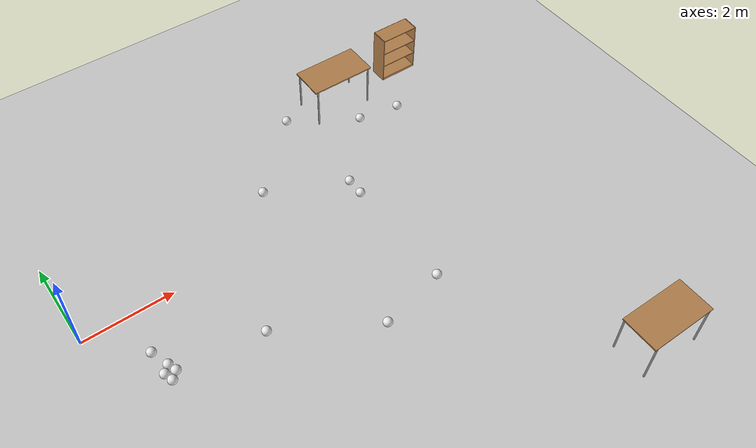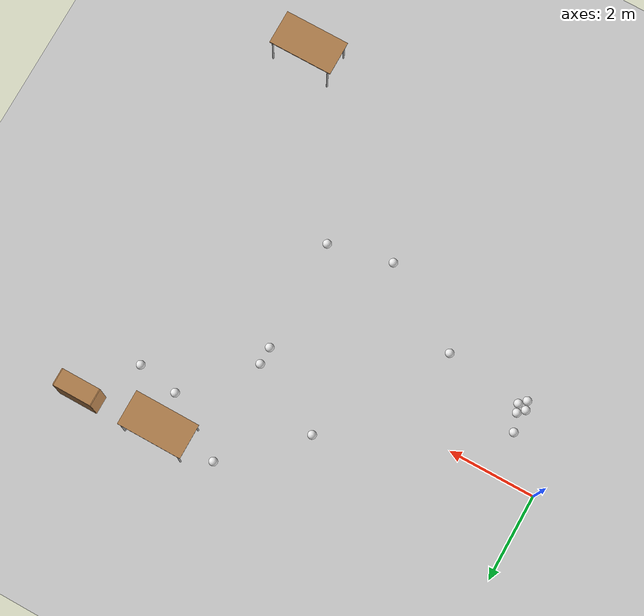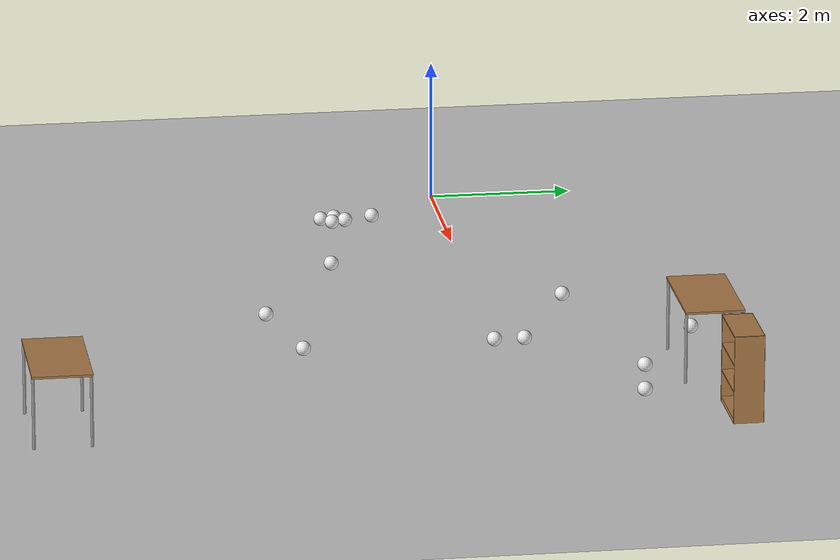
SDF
<sdf version="1.6">
 <world name="default">
  <model name="ground_plane">
   <static>1</static>
   <link name="link">
    <collision name="collision">
     <geometry><plane><normal>0 0 1</normal><size>100 100</size></plane></geometry>
     <surface>
      <contact><collide_bitmask>65535</collide_bitmask></contact>
      <friction><ode><mu>100</mu><mu2>50</mu2></ode></friction>
     </surface>
    </collision>
    <visual name="visual">
     <cast_shadows>0</cast_shadows>
     <geometry><plane><normal>0 0 1</normal><size>100 100</size></plane></geometry>
     <material>
      <script><uri>file://media/materials/scripts/gazebo.material</uri><name>Gazebo/Grey</name></script>
     </material>
    </visual>
   </link>
  </model>
  <model name="bookshelf">
   <static>1</static>
   <link name="link">
    <inertial><mass>1</mass></inertial>
    <collision name="back">
     <pose>0 0.005 0.6 0 -0 0</pose>
     <geometry><box><size>0.9 0.01 1.2</size></box></geometry>
    </collision>
    <visual name="visual1">
     <pose>0 0.005 0.6 0 -0 0</pose>
     <geometry><box><size>0.9 0.01 1.2</size></box></geometry>
     <material>
      <script><uri>file://media/materials/scripts/gazebo.material</uri><name>Gazebo/Wood</name></script>
     </material>
    </visual>
    <collision name="left_side">
     <pose>0.45 -0.195 0.6 0 -0 0</pose>
     <geometry><box><size>0.02 0.4 1.2</size></box></geometry>
    </collision>
    <visual name="visual2">
     <pose>0.45 -0.195 0.6 0 -0 0</pose>
     <geometry><box><size>0.02 0.4 1.2</size></box></geometry>
     <material>
      <script><uri>file://media/materials/scripts/gazebo.material</uri><name>Gazebo/Wood</name></script>
     </material>
    </visual>
    <collision name="right_side">
     <pose>-0.45 -0.195 0.6 0 -0 0</pose>
     <geometry><box><size>0.02 0.4 1.2</size></box></geometry>
    </collision>
    <visual name="visual3">
     <pose>-0.45 -0.195 0.6 0 -0 0</pose>
     <geometry><box><size>0.02 0.4 1.2</size></box></geometry>
     <material>
      <script><uri>file://media/materials/scripts/gazebo.material</uri><name>Gazebo/Wood</name></script>
     </material>
    </visual>
    <collision name="bottom">
     <pose>0 -0.195 0.03 0 -0 0</pose>
     <geometry><box><size>0.88 0.4 0.06</size></box></geometry>
    </collision>
    <visual name="visual4">
     <pose>0 -0.195 0.03 0 -0 0</pose>
     <geometry><box><size>0.88 0.4 0.06</size></box></geometry>
     <material>
      <script><uri>file://media/materials/scripts/gazebo.material</uri><name>Gazebo/Wood</name></script>
     </material>
    </visual>
    <collision name="top">
     <pose>0 -0.195 1.19 0 -0 0</pose>
     <geometry><box><size>0.88 0.4 0.02</size></box></geometry>
    </collision>
    <visual name="visual5">
     <pose>0 -0.195 1.19 0 -0 0</pose>
     <geometry><box><size>0.88 0.4 0.02</size></box></geometry>
     <material>
      <script><uri>file://media/materials/scripts/gazebo.material</uri><name>Gazebo/Wood</name></script>
     </material>
    </visual>
    <collision name="low_shelf">
     <pose>0 -0.195 0.43 0 -0 0</pose>
     <geometry><box><size>0.88 0.4 0.02</size></box></geometry>
    </collision>
    <visual name="visual6">
     <pose>0 -0.195 0.43 0 -0 0</pose>
     <geometry><box><size>0.88 0.4 0.02</size></box></geometry>
     <material>
      <script><uri>file://media/materials/scripts/gazebo.material</uri><name>Gazebo/Wood</name></script>
     </material>
    </visual>
    <collision name="high_shelf">
     <pose>0 -0.195 0.8 0 -0 0</pose>
     <geometry><box><size>0.88 0.4 0.02</size></box></geometry>
    </collision>
    <visual name="visual7">
     <pose>0 -0.195 0.8 0 -0 0</pose>
     <geometry><box><size>0.88 0.4 0.02</size></box></geometry>
     <material>
      <script><uri>file://media/materials/scripts/gazebo.material</uri><name>Gazebo/Wood</name></script>
     </material>
    </visual>
   </link>
   <pose>9.42091 2.96411 0 0 -0 0</pose>
  </model>
  <model name="table">
   <static>1</static>
   <link name="link">
    <collision name="surface">
     <pose>0 0 1 0 -0 0</pose>
     <geometry><box><size>1.5 0.8 0.03</size></box></geometry>
     <surface><friction><ode><mu>0.6</mu><mu2>0.6</mu2></ode></friction></surface>
    </collision>
    <visual name="visual1">
     <pose>0 0 1 0 -0 0</pose>
     <geometry><box><size>1.5 0.8 0.03</size></box></geometry>
     <material>
      <script><uri>file://media/materials/scripts/gazebo.material</uri><name>Gazebo/Wood</name></script>
     </material>
    </visual>
    <collision name="front_left_leg">
     <pose>0.68 0.38 0.5 0 -0 0</pose>
     <geometry><cylinder><radius>0.02</radius><length>1</length></cylinder></geometry>
    </collision>
    <visual name="front_left_leg">
     <pose>0.68 0.38 0.5 0 -0 0</pose>
     <geometry><cylinder><radius>0.02</radius><length>1</length></cylinder></geometry>
     <material>
      <script><uri>file://media/materials/scripts/gazebo.material</uri><name>Gazebo/Grey</name></script>
     </material>
    </visual>
    <collision name="front_right_leg">
     <pose>0.68 -0.38 0.5 0 -0 0</pose>
     <geometry><cylinder><radius>0.02</radius><length>1</length></cylinder></geometry>
    </collision>
    <visual name="front_right_leg">
     <pose>0.68 -0.38 0.5 0 -0 0</pose>
     <geometry><cylinder><radius>0.02</radius><length>1</length></cylinder></geometry>
     <material>
      <script><uri>file://media/materials/scripts/gazebo.material</uri><name>Gazebo/Grey</name></script>
     </material>
    </visual>
    <collision name="back_right_leg">
     <pose>-0.68 -0.38 0.5 0 -0 0</pose>
     <geometry><cylinder><radius>0.02</radius><length>1</length></cylinder></geometry>
    </collision>
    <visual name="back_right_leg">
     <pose>-0.68 -0.38 0.5 0 -0 0</pose>
     <geometry><cylinder><radius>0.02</radius><length>1</length></cylinder></geometry>
     <material>
      <script><uri>file://media/materials/scripts/gazebo.material</uri><name>Gazebo/Grey</name></script>
     </material>
    </visual>
    <collision name="back_left_leg">
     <pose>-0.68 0.38 0.5 0 -0 0</pose>
     <geometry><cylinder><radius>0.02</radius><length>1</length></cylinder></geometry>
    </collision>
    <visual name="back_left_leg">
     <pose>-0.68 0.38 0.5 0 -0 0</pose>
     <geometry><cylinder><radius>0.02</radius><length>1</length></cylinder></geometry>
     <material>
      <script><uri>file://media/materials/scripts/gazebo.material</uri><name>Gazebo/Grey</name></script>
     </material>
    </visual>
   </link>
   <pose>7.57168 2.60503 0 0 -0 0</pose>
  </model>
  <model name="my_ball">
   <link name="link">
    <inertial>
     <mass>1</mass>
     <inertia><ixx>0.1</ixx><ixy>0</ixy><ixz>0</ixz><iyy>0.1</iyy><iyz>0</iyz><izz>0.1</izz></inertia>
    </inertial>
    <visual name="visual">
     <geometry><sphere><radius>0.1</radius></sphere></geometry>
     <material>
      <script><name>Gazebo/White</name><uri>file://media/materials/scripts/gazebo.material</uri></script>
      <shader type="pixel"><normal_map>__default__</normal_map></shader>
      <ambient>1 1 1 1</ambient>
      <diffuse>1 1 1 1</diffuse>
      <specular>1 1 1 1</specular>
      <emissive>1 1 1 1</emissive>
     </material>
    </visual>
    <collision name="collision">
     <geometry><sphere><radius>0.1</radius></sphere></geometry>
     <surface>
      <friction>
       <ode><mu>1</mu><mu2>1</mu2><fdir1>0 0 0</fdir1><slip1>0</slip1><slip2>0</slip2></ode>
       <torsional>
        <coefficient>1</coefficient>
        <patch_radius>0</patch_radius>
        <surface_radius>0</surface_radius>
        <use_patch_radius>1</use_patch_radius>
        <ode><slip>0</slip></ode>
       </torsional>
      </friction>
      <bounce><restitution_coefficient>0</restitution_coefficient><threshold>1e+06</threshold></bounce>
      <contact>
       <collide_without_contact>0</collide_without_contact>
       <collide_without_contact_bitmask>1</collide_without_contact_bitmask>
       <collide_bitmask>1</collide_bitmask>
       <ode>
        <soft_cfm>0</soft_cfm>
        <soft_erp>0.2</soft_erp>
        <kp>1e+13</kp>
        <kd>1</kd>
        <max_vel>0.01</max_vel>
        <min_depth>0</min_depth>
       </ode>
       <bullet>
        <split_impulse>1</split_impulse>
        <split_impulse_penetration_threshold>-0.01</split_impulse_penetration_threshold>
        <soft_cfm>0</soft_cfm>
        <soft_erp>0.2</soft_erp>
        <kp>1e+13</kp>
        <kd>1</kd>
       </bullet>
      </contact>
     </surface>
    </collision>
   </link>
   <static>0</static>
   <pose>6.2733 2.65333 0.1 0 -0 0</pose>
  </model>
  <model name="table_0_clone">
   <static>1</static>
   <link name="link">
    <collision name="surface">
     <pose>0 0 1 0 -0 0</pose>
     <geometry><box><size>1.5 0.8 0.03</size></box></geometry>
     <surface><friction><ode><mu>0.6</mu><mu2>0.6</mu2></ode></friction></surface>
    </collision>
    <visual name="visual1">
     <pose>0 0 1 0 -0 0</pose>
     <geometry><box><size>1.5 0.8 0.03</size></box></geometry>
     <material>
      <script><uri>file://media/materials/scripts/gazebo.material</uri><name>Gazebo/Wood</name></script>
     </material>
    </visual>
    <collision name="front_left_leg">
     <pose>0.68 0.38 0.5 0 -0 0</pose>
     <geometry><cylinder><radius>0.02</radius><length>1</length></cylinder></geometry>
    </collision>
    <visual name="front_left_leg">
     <pose>0.68 0.38 0.5 0 -0 0</pose>
     <geometry><cylinder><radius>0.02</radius><length>1</length></cylinder></geometry>
     <material>
      <script><uri>file://media/materials/scripts/gazebo.material</uri><name>Gazebo/Grey</name></script>
     </material>
    </visual>
    <collision name="front_right_leg">
     <pose>0.68 -0.38 0.5 0 -0 0</pose>
     <geometry><cylinder><radius>0.02</radius><length>1</length></cylinder></geometry>
    </collision>
    <visual name="front_right_leg">
     <pose>0.68 -0.38 0.5 0 -0 0</pose>
     <geometry><cylinder><radius>0.02</radius><length>1</length></cylinder></geometry>
     <material>
      <script><uri>file://media/materials/scripts/gazebo.material</uri><name>Gazebo/Grey</name></script>
     </material>
    </visual>
    <collision name="back_right_leg">
     <pose>-0.68 -0.38 0.5 0 -0 0</pose>
     <geometry><cylinder><radius>0.02</radius><length>1</length></cylinder></geometry>
    </collision>
    <visual name="back_right_leg">
     <pose>-0.68 -0.38 0.5 0 -0 0</pose>
     <geometry><cylinder><radius>0.02</radius><length>1</length></cylinder></geometry>
     <material>
      <script><uri>file://media/materials/scripts/gazebo.material</uri><name>Gazebo/Grey</name></script>
     </material>
    </visual>
    <collision name="back_left_leg">
     <pose>-0.68 0.38 0.5 0 -0 0</pose>
     <geometry><cylinder><radius>0.02</radius><length>1</length></cylinder></geometry>
    </collision>
    <visual name="back_left_leg">
     <pose>-0.68 0.38 0.5 0 -0 0</pose>
     <geometry><cylinder><radius>0.02</radius><length>1</length></cylinder></geometry>
     <material>
      <script><uri>file://media/materials/scripts/gazebo.material</uri><name>Gazebo/Grey</name></script>
     </material>
    </visual>
   </link>
   <pose>8.88824 -6.2007 0 0 -0 0</pose>
  </model>
  <model name="my_ball_clone">
   <link name="link">
    <inertial>
     <mass>1</mass>
     <inertia><ixx>0.1</ixx><ixy>0</ixy><ixz>0</ixz><iyy>0.1</iyy><iyz>0</iyz><izz>0.1</izz></inertia>
    </inertial>
    <visual name="visual">
     <geometry><sphere><radius>0.1</radius></sphere></geometry>
     <material>
      <script><name>Gazebo/White</name><uri>file://media/materials/scripts/gazebo.material</uri></script>
      <shader type="pixel"><normal_map>__default__</normal_map></shader>
      <ambient>1 1 1 1</ambient>
      <diffuse>1 1 1 1</diffuse>
      <specular>1 1 1 1</specular>
      <emissive>1 1 1 1</emissive>
     </material>
    </visual>
    <collision name="collision">
     <geometry><sphere><radius>0.1</radius></sphere></geometry>
     <surface>
      <friction>
       <ode><mu>1</mu><mu2>1</mu2><fdir1>0 0 0</fdir1><slip1>0</slip1><slip2>0</slip2></ode>
       <torsional>
        <coefficient>1</coefficient>
        <patch_radius>0</patch_radius>
        <surface_radius>0</surface_radius>
        <use_patch_radius>1</use_patch_radius>
        <ode><slip>0</slip></ode>
       </torsional>
      </friction>
      <bounce><restitution_coefficient>0</restitution_coefficient><threshold>1e+06</threshold></bounce>
      <contact>
       <collide_without_contact>0</collide_without_contact>
       <collide_without_contact_bitmask>1</collide_without_contact_bitmask>
       <collide_bitmask>1</collide_bitmask>
       <ode>
        <soft_cfm>0</soft_cfm>
        <soft_erp>0.2</soft_erp>
        <kp>1e+13</kp>
        <kd>1</kd>
        <max_vel>0.01</max_vel>
        <min_depth>0</min_depth>
       </ode>
       <bullet>
        <split_impulse>1</split_impulse>
        <split_impulse_penetration_threshold>-0.01</split_impulse_penetration_threshold>
        <soft_cfm>0</soft_cfm>
        <soft_erp>0.2</soft_erp>
        <kp>1e+13</kp>
        <kd>1</kd>
       </bullet>
      </contact>
     </surface>
    </collision>
   </link>
   <static>0</static>
   <pose>7.71538 1.77147 0.1 0 -0 0</pose>
  </model>
  <model name="my_ball_clone_0">
   <link name="link">
    <inertial>
     <mass>1</mass>
     <inertia><ixx>0.1</ixx><ixy>0</ixy><ixz>0</ixz><iyy>0.1</iyy><iyz>0</iyz><izz>0.1</izz></inertia>
    </inertial>
    <visual name="visual">
     <geometry><sphere><radius>0.1</radius></sphere></geometry>
     <material>
      <script><name>Gazebo/White</name><uri>file://media/materials/scripts/gazebo.material</uri></script>
      <shader type="pixel"><normal_map>__default__</normal_map></shader>
      <ambient>1 1 1 1</ambient>
      <diffuse>1 1 1 1</diffuse>
      <specular>1 1 1 1</specular>
      <emissive>1 1 1 1</emissive>
     </material>
    </visual>
    <collision name="collision">
     <geometry><sphere><radius>0.1</radius></sphere></geometry>
     <surface>
      <friction>
       <ode><mu>1</mu><mu2>1</mu2><fdir1>0 0 0</fdir1><slip1>0</slip1><slip2>0</slip2></ode>
       <torsional>
        <coefficient>1</coefficient>
        <patch_radius>0</patch_radius>
        <surface_radius>0</surface_radius>
        <use_patch_radius>1</use_patch_radius>
        <ode><slip>0</slip></ode>
       </torsional>
      </friction>
      <bounce><restitution_coefficient>0</restitution_coefficient><threshold>1e+06</threshold></bounce>
      <contact>
       <collide_without_contact>0</collide_without_contact>
       <collide_without_contact_bitmask>1</collide_without_contact_bitmask>
       <collide_bitmask>1</collide_bitmask>
       <ode>
        <soft_cfm>0</soft_cfm>
        <soft_erp>0.2</soft_erp>
        <kp>1e+13</kp>
        <kd>1</kd>
        <max_vel>0.01</max_vel>
        <min_depth>0</min_depth>
       </ode>
       <bullet>
        <split_impulse>1</split_impulse>
        <split_impulse_penetration_threshold>-0.01</split_impulse_penetration_threshold>
        <soft_cfm>0</soft_cfm>
        <soft_erp>0.2</soft_erp>
        <kp>1e+13</kp>
        <kd>1</kd>
       </bullet>
      </contact>
     </surface>
    </collision>
   </link>
   <static>0</static>
   <pose>8.6603 1.60692 0.1 0 -0 0</pose>
  </model>
  <model name="my_ball_clone_1">
   <link name="link">
    <inertial>
     <mass>1</mass>
     <inertia><ixx>0.1</ixx><ixy>0</ixy><ixz>0</ixz><iyy>0.1</iyy><iyz>0</iyz><izz>0.1</izz></inertia>
    </inertial>
    <visual name="visual">
     <geometry><sphere><radius>0.1</radius></sphere></geometry>
     <material>
      <script><name>Gazebo/White</name><uri>file://media/materials/scripts/gazebo.material</uri></script>
      <shader type="pixel"><normal_map>__default__</normal_map></shader>
      <ambient>1 1 1 1</ambient>
      <diffuse>1 1 1 1</diffuse>
      <specular>1 1 1 1</specular>
      <emissive>1 1 1 1</emissive>
     </material>
    </visual>
    <collision name="collision">
     <geometry><sphere><radius>0.1</radius></sphere></geometry>
     <surface>
      <friction>
       <ode><mu>1</mu><mu2>1</mu2><fdir1>0 0 0</fdir1><slip1>0</slip1><slip2>0</slip2></ode>
       <torsional>
        <coefficient>1</coefficient>
        <patch_radius>0</patch_radius>
        <surface_radius>0</surface_radius>
        <use_patch_radius>1</use_patch_radius>
        <ode><slip>0</slip></ode>
       </torsional>
      </friction>
      <bounce><restitution_coefficient>0</restitution_coefficient><threshold>1e+06</threshold></bounce>
      <contact>
       <collide_without_contact>0</collide_without_contact>
       <collide_without_contact_bitmask>1</collide_without_contact_bitmask>
       <collide_bitmask>1</collide_bitmask>
       <ode>
        <soft_cfm>0</soft_cfm>
        <soft_erp>0.2</soft_erp>
        <kp>1e+13</kp>
        <kd>1</kd>
        <max_vel>0.01</max_vel>
        <min_depth>0</min_depth>
       </ode>
       <bullet>
        <split_impulse>1</split_impulse>
        <split_impulse_penetration_threshold>-0.01</split_impulse_penetration_threshold>
        <soft_cfm>0</soft_cfm>
        <soft_erp>0.2</soft_erp>
        <kp>1e+13</kp>
        <kd>1</kd>
       </bullet>
      </contact>
     </surface>
    </collision>
   </link>
   <static>0</static>
   <pose>6.43065 -0.067246 0.1 0.022454 -1e-06 0</pose>
  </model>
  <model name="my_ball_clone_2">
   <link name="link">
    <inertial>
     <mass>1</mass>
     <inertia><ixx>0.1</ixx><ixy>0</ixy><ixz>0</ixz><iyy>0.1</iyy><iyz>0</iyz><izz>0.1</izz></inertia>
    </inertial>
    <visual name="visual">
     <geometry><sphere><radius>0.1</radius></sphere></geometry>
     <material>
      <script><name>Gazebo/White</name><uri>file://media/materials/scripts/gazebo.material</uri></script>
      <shader type="pixel"><normal_map>__default__</normal_map></shader>
      <ambient>1 1 1 1</ambient>
      <diffuse>1 1 1 1</diffuse>
      <specular>1 1 1 1</specular>
      <emissive>1 1 1 1</emissive>
     </material>
    </visual>
    <collision name="collision">
     <geometry><sphere><radius>0.1</radius></sphere></geometry>
     <surface>
      <friction>
       <ode><mu>1</mu><mu2>1</mu2><fdir1>0 0 0</fdir1><slip1>0</slip1><slip2>0</slip2></ode>
       <torsional>
        <coefficient>1</coefficient>
        <patch_radius>0</patch_radius>
        <surface_radius>0</surface_radius>
        <use_patch_radius>1</use_patch_radius>
        <ode><slip>0</slip></ode>
       </torsional>
      </friction>
      <bounce><restitution_coefficient>0</restitution_coefficient><threshold>1e+06</threshold></bounce>
      <contact>
       <collide_without_contact>0</collide_without_contact>
       <collide_without_contact_bitmask>1</collide_without_contact_bitmask>
       <collide_bitmask>1</collide_bitmask>
       <ode>
        <soft_cfm>0</soft_cfm>
        <soft_erp>0.2</soft_erp>
        <kp>1e+13</kp>
        <kd>1</kd>
        <max_vel>0.01</max_vel>
        <min_depth>0</min_depth>
       </ode>
       <bullet>
        <split_impulse>1</split_impulse>
        <split_impulse_penetration_threshold>-0.01</split_impulse_penetration_threshold>
        <soft_cfm>0</soft_cfm>
        <soft_erp>0.2</soft_erp>
        <kp>1e+13</kp>
        <kd>1</kd>
       </bullet>
      </contact>
     </surface>
    </collision>
   </link>
   <static>0</static>
   <pose>6.43186 0.342675 0.1 0 -0 0</pose>
  </model>
  <model name="my_ball_clone_3">
   <link name="link">
    <inertial>
     <mass>1</mass>
     <inertia><ixx>0.1</ixx><ixy>0</ixy><ixz>0</ixz><iyy>0.1</iyy><iyz>0</iyz><izz>0.1</izz></inertia>
    </inertial>
    <visual name="visual">
     <geometry><sphere><radius>0.1</radius></sphere></geometry>
     <material>
      <script><name>Gazebo/White</name><uri>file://media/materials/scripts/gazebo.material</uri></script>
      <shader type="pixel"><normal_map>__default__</normal_map></shader>
      <ambient>1 1 1 1</ambient>
      <diffuse>1 1 1 1</diffuse>
      <specular>1 1 1 1</specular>
      <emissive>1 1 1 1</emissive>
     </material>
    </visual>
    <collision name="collision">
     <geometry><sphere><radius>0.1</radius></sphere></geometry>
     <surface>
      <friction>
       <ode><mu>1</mu><mu2>1</mu2><fdir1>0 0 0</fdir1><slip1>0</slip1><slip2>0</slip2></ode>
       <torsional>
        <coefficient>1</coefficient>
        <patch_radius>0</patch_radius>
        <surface_radius>0</surface_radius>
        <use_patch_radius>1</use_patch_radius>
        <ode><slip>0</slip></ode>
       </torsional>
      </friction>
      <bounce><restitution_coefficient>0</restitution_coefficient><threshold>1e+06</threshold></bounce>
      <contact>
       <collide_without_contact>0</collide_without_contact>
       <collide_without_contact_bitmask>1</collide_without_contact_bitmask>
       <collide_bitmask>1</collide_bitmask>
       <ode>
        <soft_cfm>0</soft_cfm>
        <soft_erp>0.2</soft_erp>
        <kp>1e+13</kp>
        <kd>1</kd>
        <max_vel>0.01</max_vel>
        <min_depth>0</min_depth>
       </ode>
       <bullet>
        <split_impulse>1</split_impulse>
        <split_impulse_penetration_threshold>-0.01</split_impulse_penetration_threshold>
        <soft_cfm>0</soft_cfm>
        <soft_erp>0.2</soft_erp>
        <kp>1e+13</kp>
        <kd>1</kd>
       </bullet>
      </contact>
     </surface>
    </collision>
   </link>
   <static>0</static>
   <pose>4.72001 1.1365 0.1 0 -0 0</pose>
  </model>
  <model name="my_ball_clone_4">
   <link name="link">
    <inertial>
     <mass>1</mass>
     <inertia><ixx>0.1</ixx><ixy>0</ixy><ixz>0</ixz><iyy>0.1</iyy><iyz>0</iyz><izz>0.1</izz></inertia>
    </inertial>
    <visual name="visual">
     <geometry><sphere><radius>0.1</radius></sphere></geometry>
     <material>
      <script><name>Gazebo/White</name><uri>file://media/materials/scripts/gazebo.material</uri></script>
      <shader type="pixel"><normal_map>__default__</normal_map></shader>
      <ambient>1 1 1 1</ambient>
      <diffuse>1 1 1 1</diffuse>
      <specular>1 1 1 1</specular>
      <emissive>1 1 1 1</emissive>
     </material>
    </visual>
    <collision name="collision">
     <geometry><sphere><radius>0.1</radius></sphere></geometry>
     <surface>
      <friction>
       <ode><mu>1</mu><mu2>1</mu2><fdir1>0 0 0</fdir1><slip1>0</slip1><slip2>0</slip2></ode>
       <torsional>
        <coefficient>1</coefficient>
        <patch_radius>0</patch_radius>
        <surface_radius>0</surface_radius>
        <use_patch_radius>1</use_patch_radius>
        <ode><slip>0</slip></ode>
       </torsional>
      </friction>
      <bounce><restitution_coefficient>0</restitution_coefficient><threshold>1e+06</threshold></bounce>
      <contact>
       <collide_without_contact>0</collide_without_contact>
       <collide_without_contact_bitmask>1</collide_without_contact_bitmask>
       <collide_bitmask>1</collide_bitmask>
       <ode>
        <soft_cfm>0</soft_cfm>
        <soft_erp>0.2</soft_erp>
        <kp>1e+13</kp>
        <kd>1</kd>
        <max_vel>0.01</max_vel>
        <min_depth>0</min_depth>
       </ode>
       <bullet>
        <split_impulse>1</split_impulse>
        <split_impulse_penetration_threshold>-0.01</split_impulse_penetration_threshold>
        <soft_cfm>0</soft_cfm>
        <soft_erp>0.2</soft_erp>
        <kp>1e+13</kp>
        <kd>1</kd>
       </bullet>
      </contact>
     </surface>
    </collision>
   </link>
   <static>0</static>
   <pose>5 -3 0.1 0 -0 0</pose>
  </model>
  <model name="my_ball_clone_5">
   <link name="link">
    <inertial>
     <mass>1</mass>
     <inertia><ixx>0.1</ixx><ixy>0</ixy><ixz>0</ixz><iyy>0.1</iyy><iyz>0</iyz><izz>0.1</izz></inertia>
    </inertial>
    <visual name="visual">
     <geometry><sphere><radius>0.1</radius></sphere></geometry>
     <material>
      <script><name>Gazebo/White</name><uri>file://media/materials/scripts/gazebo.material</uri></script>
      <shader type="pixel"><normal_map>__default__</normal_map></shader>
      <ambient>1 1 1 1</ambient>
      <diffuse>1 1 1 1</diffuse>
      <specular>1 1 1 1</specular>
      <emissive>1 1 1 1</emissive>
     </material>
    </visual>
    <collision name="collision">
     <geometry><sphere><radius>0.1</radius></sphere></geometry>
     <surface>
      <friction>
       <ode><mu>1</mu><mu2>1</mu2><fdir1>0 0 0</fdir1><slip1>0</slip1><slip2>0</slip2></ode>
       <torsional>
        <coefficient>1</coefficient>
        <patch_radius>0</patch_radius>
        <surface_radius>0</surface_radius>
        <use_patch_radius>1</use_patch_radius>
        <ode><slip>0</slip></ode>
       </torsional>
      </friction>
      <bounce><restitution_coefficient>0</restitution_coefficient><threshold>1e+06</threshold></bounce>
      <contact>
       <collide_without_contact>0</collide_without_contact>
       <collide_without_contact_bitmask>1</collide_without_contact_bitmask>
       <collide_bitmask>1</collide_bitmask>
       <ode>
        <soft_cfm>0</soft_cfm>
        <soft_erp>0.2</soft_erp>
        <kp>1e+13</kp>
        <kd>1</kd>
        <max_vel>0.01</max_vel>
        <min_depth>0</min_depth>
       </ode>
       <bullet>
        <split_impulse>1</split_impulse>
        <split_impulse_penetration_threshold>-0.01</split_impulse_penetration_threshold>
        <soft_cfm>0</soft_cfm>
        <soft_erp>0.2</soft_erp>
        <kp>1e+13</kp>
        <kd>1</kd>
       </bullet>
      </contact>
     </surface>
    </collision>
   </link>
   <static>0</static>
   <pose>6.45615 -2.66903 0.1 0 -0 0</pose>
  </model>
  <model name="my_ball_clone_6">
   <link name="link">
    <inertial>
     <mass>1</mass>
     <inertia><ixx>0.1</ixx><ixy>0</ixy><ixz>0</ixz><iyy>0.1</iyy><iyz>0</iyz><izz>0.1</izz></inertia>
    </inertial>
    <visual name="visual">
     <geometry><sphere><radius>0.1</radius></sphere></geometry>
     <material>
      <script><name>Gazebo/White</name><uri>file://media/materials/scripts/gazebo.material</uri></script>
      <shader type="pixel"><normal_map>__default__</normal_map></shader>
      <ambient>1 1 1 1</ambient>
      <diffuse>1 1 1 1</diffuse>
      <specular>1 1 1 1</specular>
      <emissive>1 1 1 1</emissive>
     </material>
    </visual>
    <collision name="collision">
     <geometry><sphere><radius>0.1</radius></sphere></geometry>
     <surface>
      <friction>
       <ode><mu>1</mu><mu2>1</mu2><fdir1>0 0 0</fdir1><slip1>0</slip1><slip2>0</slip2></ode>
       <torsional>
        <coefficient>1</coefficient>
        <patch_radius>0</patch_radius>
        <surface_radius>0</surface_radius>
        <use_patch_radius>1</use_patch_radius>
        <ode><slip>0</slip></ode>
       </torsional>
      </friction>
      <bounce><restitution_coefficient>0</restitution_coefficient><threshold>1e+06</threshold></bounce>
      <contact>
       <collide_without_contact>0</collide_without_contact>
       <collide_without_contact_bitmask>1</collide_without_contact_bitmask>
       <collide_bitmask>1</collide_bitmask>
       <ode>
        <soft_cfm>0</soft_cfm>
        <soft_erp>0.2</soft_erp>
        <kp>1e+13</kp>
        <kd>1</kd>
        <max_vel>0.01</max_vel>
        <min_depth>0</min_depth>
       </ode>
       <bullet>
        <split_impulse>1</split_impulse>
        <split_impulse_penetration_threshold>-0.01</split_impulse_penetration_threshold>
        <soft_cfm>0</soft_cfm>
        <soft_erp>0.2</soft_erp>
        <kp>1e+13</kp>
        <kd>1</kd>
       </bullet>
      </contact>
     </surface>
    </collision>
   </link>
   <static>0</static>
   <pose>2.99636 -1.84111 0.1 0 -0 0</pose>
  </model>
  <model name="my_ball_clone_7">
   <link name="link">
    <inertial>
     <mass>1</mass>
     <inertia><ixx>0.1</ixx><ixy>0</ixy><ixz>0</ixz><iyy>0.1</iyy><iyz>0</iyz><izz>0.1</izz></inertia>
    </inertial>
    <visual name="visual">
     <geometry><sphere><radius>0.1</radius></sphere></geometry>
     <material>
      <script><name>Gazebo/White</name><uri>file://media/materials/scripts/gazebo.material</uri></script>
      <shader type="pixel"><normal_map>__default__</normal_map></shader>
      <ambient>1 1 1 1</ambient>
      <diffuse>1 1 1 1</diffuse>
      <specular>1 1 1 1</specular>
      <emissive>1 1 1 1</emissive>
     </material>
    </visual>
    <collision name="collision">
     <geometry><sphere><radius>0.1</radius></sphere></geometry>
     <surface>
      <friction>
       <ode><mu>1</mu><mu2>1</mu2><fdir1>0 0 0</fdir1><slip1>0</slip1><slip2>0</slip2></ode>
       <torsional>
        <coefficient>1</coefficient>
        <patch_radius>0</patch_radius>
        <surface_radius>0</surface_radius>
        <use_patch_radius>1</use_patch_radius>
        <ode><slip>0</slip></ode>
       </torsional>
      </friction>
      <bounce><restitution_coefficient>0</restitution_coefficient><threshold>1e+06</threshold></bounce>
      <contact>
       <collide_without_contact>0</collide_without_contact>
       <collide_without_contact_bitmask>1</collide_without_contact_bitmask>
       <collide_bitmask>1</collide_bitmask>
       <ode>
        <soft_cfm>0</soft_cfm>
        <soft_erp>0.2</soft_erp>
        <kp>1e+13</kp>
        <kd>1</kd>
        <max_vel>0.01</max_vel>
        <min_depth>0</min_depth>
       </ode>
       <bullet>
        <split_impulse>1</split_impulse>
        <split_impulse_penetration_threshold>-0.01</split_impulse_penetration_threshold>
        <soft_cfm>0</soft_cfm>
        <soft_erp>0.2</soft_erp>
        <kp>1e+13</kp>
        <kd>1</kd>
       </bullet>
      </contact>
     </surface>
    </collision>
   </link>
   <static>0</static>
   <pose>1.0584 -1.73682 0.1 0.038364 -0.007817 -0.009188</pose>
  </model>
  <model name="my_ball_clone_8">
   <link name="link">
    <inertial>
     <mass>1</mass>
     <inertia><ixx>0.1</ixx><ixy>0</ixy><ixz>0</ixz><iyy>0.1</iyy><iyz>0</iyz><izz>0.1</izz></inertia>
    </inertial>
    <visual name="visual">
     <geometry><sphere><radius>0.1</radius></sphere></geometry>
     <material>
      <script><name>Gazebo/White</name><uri>file://media/materials/scripts/gazebo.material</uri></script>
      <shader type="pixel"><normal_map>__default__</normal_map></shader>
      <ambient>1 1 1 1</ambient>
      <diffuse>1 1 1 1</diffuse>
      <specular>1 1 1 1</specular>
      <emissive>1 1 1 1</emissive>
     </material>
    </visual>
    <collision name="collision">
     <geometry><sphere><radius>0.1</radius></sphere></geometry>
     <surface>
      <friction>
       <ode><mu>1</mu><mu2>1</mu2><fdir1>0 0 0</fdir1><slip1>0</slip1><slip2>0</slip2></ode>
       <torsional>
        <coefficient>1</coefficient>
        <patch_radius>0</patch_radius>
        <surface_radius>0</surface_radius>
        <use_patch_radius>1</use_patch_radius>
        <ode><slip>0</slip></ode>
       </torsional>
      </friction>
      <bounce><restitution_coefficient>0</restitution_coefficient><threshold>1e+06</threshold></bounce>
      <contact>
       <collide_without_contact>0</collide_without_contact>
       <collide_without_contact_bitmask>1</collide_without_contact_bitmask>
       <collide_bitmask>1</collide_bitmask>
       <ode>
        <soft_cfm>0</soft_cfm>
        <soft_erp>0.2</soft_erp>
        <kp>1e+13</kp>
        <kd>1</kd>
        <max_vel>0.01</max_vel>
        <min_depth>0</min_depth>
       </ode>
       <bullet>
        <split_impulse>1</split_impulse>
        <split_impulse_penetration_threshold>-0.01</split_impulse_penetration_threshold>
        <soft_cfm>0</soft_cfm>
        <soft_erp>0.2</soft_erp>
        <kp>1e+13</kp>
        <kd>1</kd>
       </bullet>
      </contact>
     </surface>
    </collision>
   </link>
   <static>0</static>
   <pose>1.20441 -1.59319 0.1 -0.009393 0.031641 0.0017</pose>
  </model>
  <model name="my_ball_clone_9">
   <link name="link">
    <inertial>
     <mass>1</mass>
     <inertia><ixx>0.1</ixx><ixy>0</ixy><ixz>0</ixz><iyy>0.1</iyy><iyz>0</iyz><izz>0.1</izz></inertia>
    </inertial>
    <visual name="visual">
     <geometry><sphere><radius>0.1</radius></sphere></geometry>
     <material>
      <script><name>Gazebo/White</name><uri>file://media/materials/scripts/gazebo.material</uri></script>
      <shader type="pixel"><normal_map>__default__</normal_map></shader>
      <ambient>1 1 1 1</ambient>
      <diffuse>1 1 1 1</diffuse>
      <specular>1 1 1 1</specular>
      <emissive>1 1 1 1</emissive>
     </material>
    </visual>
    <collision name="collision">
     <geometry><sphere><radius>0.1</radius></sphere></geometry>
     <surface>
      <friction>
       <ode><mu>1</mu><mu2>1</mu2><fdir1>0 0 0</fdir1><slip1>0</slip1><slip2>0</slip2></ode>
       <torsional>
        <coefficient>1</coefficient>
        <patch_radius>0</patch_radius>
        <surface_radius>0</surface_radius>
        <use_patch_radius>1</use_patch_radius>
        <ode><slip>0</slip></ode>
       </torsional>
      </friction>
      <bounce><restitution_coefficient>0</restitution_coefficient><threshold>1e+06</threshold></bounce>
      <contact>
       <collide_without_contact>0</collide_without_contact>
       <collide_without_contact_bitmask>1</collide_without_contact_bitmask>
       <collide_bitmask>1</collide_bitmask>
       <ode>
        <soft_cfm>0</soft_cfm>
        <soft_erp>0.2</soft_erp>
        <kp>1e+13</kp>
        <kd>1</kd>
        <max_vel>0.01</max_vel>
        <min_depth>0</min_depth>
       </ode>
       <bullet>
        <split_impulse>1</split_impulse>
        <split_impulse_penetration_threshold>-0.01</split_impulse_penetration_threshold>
        <soft_cfm>0</soft_cfm>
        <soft_erp>0.2</soft_erp>
        <kp>1e+13</kp>
        <kd>1</kd>
       </bullet>
      </contact>
     </surface>
    </collision>
   </link>
   <static>0</static>
   <pose>1.13908 -1.40116 0.1 -0.018258 -0.00472 0.00598</pose>
  </model>
  <model name="my_ball_clone_10">
   <link name="link">
    <inertial>
     <mass>1</mass>
     <inertia><ixx>0.1</ixx><ixy>0</ixy><ixz>0</ixz><iyy>0.1</iyy><iyz>0</iyz><izz>0.1</izz></inertia>
    </inertial>
    <visual name="visual">
     <geometry><sphere><radius>0.1</radius></sphere></geometry>
     <material>
      <script><name>Gazebo/White</name><uri>file://media/materials/scripts/gazebo.material</uri></script>
      <shader type="pixel"><normal_map>__default__</normal_map></shader>
      <ambient>1 1 1 1</ambient>
      <diffuse>1 1 1 1</diffuse>
      <specular>1 1 1 1</specular>
      <emissive>1 1 1 1</emissive>
     </material>
    </visual>
    <collision name="collision">
     <geometry><sphere><radius>0.1</radius></sphere></geometry>
     <surface>
      <friction>
       <ode><mu>1</mu><mu2>1</mu2><fdir1>0 0 0</fdir1><slip1>0</slip1><slip2>0</slip2></ode>
       <torsional>
        <coefficient>1</coefficient>
        <patch_radius>0</patch_radius>
        <surface_radius>0</surface_radius>
        <use_patch_radius>1</use_patch_radius>
        <ode><slip>0</slip></ode>
       </torsional>
      </friction>
      <bounce><restitution_coefficient>0</restitution_coefficient><threshold>1e+06</threshold></bounce>
      <contact>
       <collide_without_contact>0</collide_without_contact>
       <collide_without_contact_bitmask>1</collide_without_contact_bitmask>
       <collide_bitmask>1</collide_bitmask>
       <ode>
        <soft_cfm>0</soft_cfm>
        <soft_erp>0.2</soft_erp>
        <kp>1e+13</kp>
        <kd>1</kd>
        <max_vel>0.01</max_vel>
        <min_depth>0</min_depth>
       </ode>
       <bullet>
        <split_impulse>1</split_impulse>
        <split_impulse_penetration_threshold>-0.01</split_impulse_penetration_threshold>
        <soft_cfm>0</soft_cfm>
        <soft_erp>0.2</soft_erp>
        <kp>1e+13</kp>
        <kd>1</kd>
       </bullet>
      </contact>
     </surface>
    </collision>
   </link>
   <static>0</static>
   <pose>0.997811 -1.54302 0.1 -0.013121 -0.008615 -0.004498</pose>
  </model>
  <model name="my_ball_clone_11">
   <link name="link">
    <inertial>
     <mass>1</mass>
     <inertia><ixx>0.1</ixx><ixy>0</ixy><ixz>0</ixz><iyy>0.1</iyy><iyz>0</iyz><izz>0.1</izz></inertia>
    </inertial>
    <visual name="visual">
     <geometry><sphere><radius>0.1</radius></sphere></geometry>
     <material>
      <script><name>Gazebo/White</name><uri>file://media/materials/scripts/gazebo.material</uri></script>
      <shader type="pixel"><normal_map>__default__</normal_map></shader>
      <ambient>1 1 1 1</ambient>
      <diffuse>1 1 1 1</diffuse>
      <specular>1 1 1 1</specular>
      <emissive>1 1 1 1</emissive>
     </material>
    </visual>
    <collision name="collision">
     <geometry><sphere><radius>0.1</radius></sphere></geometry>
     <surface>
      <friction>
       <ode><mu>1</mu><mu2>1</mu2><fdir1>0 0 0</fdir1><slip1>0</slip1><slip2>0</slip2></ode>
       <torsional>
        <coefficient>1</coefficient>
        <patch_radius>0</patch_radius>
        <surface_radius>0</surface_radius>
        <use_patch_radius>1</use_patch_radius>
        <ode><slip>0</slip></ode>
       </torsional>
      </friction>
      <bounce><restitution_coefficient>0</restitution_coefficient><threshold>1e+06</threshold></bounce>
      <contact>
       <collide_without_contact>0</collide_without_contact>
       <collide_without_contact_bitmask>1</collide_without_contact_bitmask>
       <collide_bitmask>1</collide_bitmask>
       <ode>
        <soft_cfm>0</soft_cfm>
        <soft_erp>0.2</soft_erp>
        <kp>1e+13</kp>
        <kd>1</kd>
        <max_vel>0.01</max_vel>
        <min_depth>0</min_depth>
       </ode>
       <bullet>
        <split_impulse>1</split_impulse>
        <split_impulse_penetration_threshold>-0.01</split_impulse_penetration_threshold>
        <soft_cfm>0</soft_cfm>
        <soft_erp>0.2</soft_erp>
        <kp>1e+13</kp>
        <kd>1</kd>
       </bullet>
      </contact>
     </surface>
    </collision>
   </link>
   <static>0</static>
   <pose>1 -1 0.1 0 -0 0</pose>
  </model>
 </world>
</sdf>
